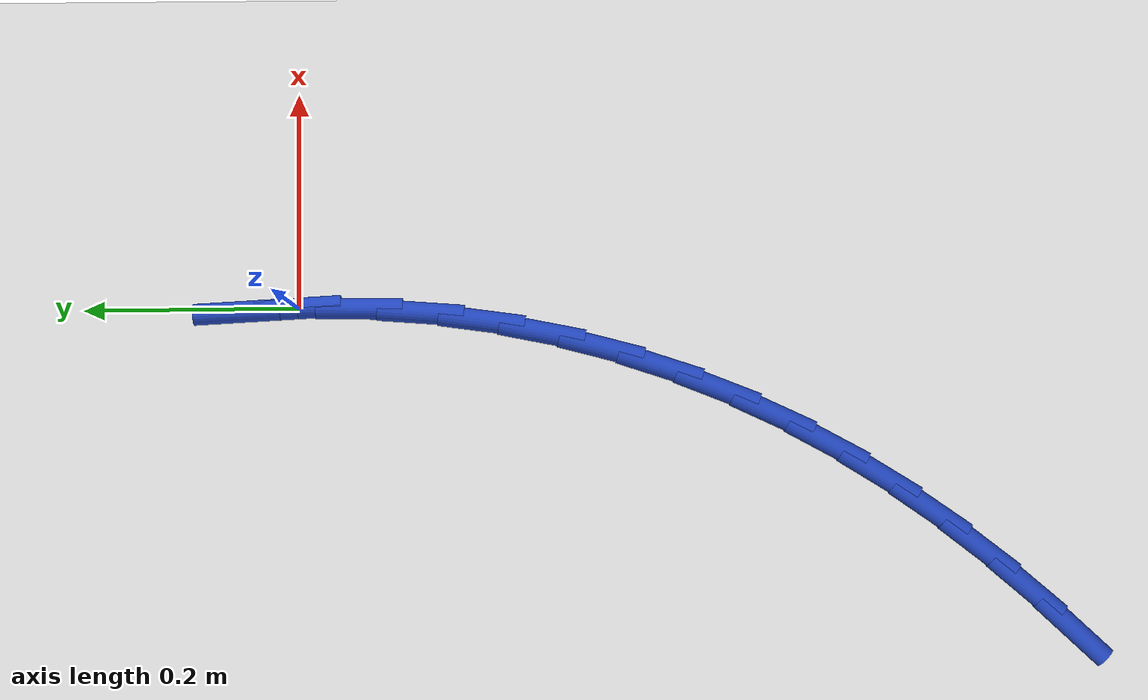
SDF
<sdf version="1.6">
 <world name="default">
  <model name="ground_plane">
   <static>1</static>
   <link name="link">
    <collision name="collision">
     <geometry><plane><normal>0 0 1</normal><size>100 100</size></plane></geometry>
     <surface><friction><ode><mu>100</mu><mu2>50</mu2></ode></friction></surface>
    </collision>
    <visual name="visual">
     <cast_shadows>0</cast_shadows>
     <geometry><plane><normal>0 0 1</normal><size>100 100</size></plane></geometry>
     <material>
      <script><uri>file://media/materials/scripts/gazebo.material</uri><name>Gazebo/WhiteGlow</name></script>
     </material>
    </visual>
   </link>
  </model>
  <model name="line">
   <link name="link_0">
    <pose>-4.336808689942018e-17 6.938893903907228e-17 0.01 0 1.57 -1.5190994933021693</pose>
    <collision name="collision">
     <geometry><cylinder><radius>0.01</radius><length>0.08</length></cylinder></geometry>
    </collision>
    <visual name="visual">
     <material>
      <script><name>Gazebo/Blue</name><uri>file://media/materials/scripts/gazebo.material</uri></script>
     </material>
     <geometry><cylinder><radius>0.01</radius><length>0.08</length></cylinder></geometry>
    </visual>
   </link>
   <link name="link_126">
    <pose>-0.2997509933152197 -0.7089466477776436 0.01 0 1.57 0.8168774032001841</pose>
    <collision name="collision">
     <geometry><cylinder><radius>0.01</radius><length>0.08</length></cylinder></geometry>
    </collision>
    <visual name="visual">
     <material>
      <script><name>Gazebo/Blue</name><uri>file://media/materials/scripts/gazebo.material</uri></script>
     </material>
     <geometry><cylinder><radius>0.01</radius><length>0.08</length></cylinder></geometry>
    </visual>
   </link>
   <link name="link_127">
    <pose>-0.26098506181976017 -0.6676598856207207 0.01 0 1.57 0.8611077827764355</pose>
    <collision name="collision">
     <geometry><cylinder><radius>0.01</radius><length>0.08</length></cylinder></geometry>
    </collision>
    <visual name="visual">
     <material>
      <script><name>Gazebo/Blue</name><uri>file://media/materials/scripts/gazebo.material</uri></script>
     </material>
     <geometry><cylinder><radius>0.01</radius><length>0.08</length></cylinder></geometry>
    </visual>
   </link>
   <link name="link_128">
    <pose>-0.22419353489003566 -0.6248286017226721 0.01 0 1.57 0.9087050685921298</pose>
    <collision name="collision">
     <geometry><cylinder><radius>0.01</radius><length>0.08</length></cylinder></geometry>
    </collision>
    <visual name="visual">
     <material>
      <script><name>Gazebo/Blue</name><uri>file://media/materials/scripts/gazebo.material</uri></script>
     </material>
     <geometry><cylinder><radius>0.01</radius><length>0.08</length></cylinder></geometry>
    </visual>
   </link>
   <link name="link_129">
    <pose>-0.18957674497732932 -0.580417427916932 0.01 0 1.57 0.9597318842048985</pose>
    <collision name="collision">
     <geometry><cylinder><radius>0.01</radius><length>0.08</length></cylinder></geometry>
    </collision>
    <visual name="visual">
     <material>
      <script><name>Gazebo/Blue</name><uri>file://media/materials/scripts/gazebo.material</uri></script>
     </material>
     <geometry><cylinder><radius>0.01</radius><length>0.08</length></cylinder></geometry>
    </visual>
   </link>
   <link name="link_130">
    <pose>-0.1573350245329243 -0.5343909960369343 0.01 0 1.57 1.0141880352912476</pose>
    <collision name="collision">
     <geometry><cylinder><radius>0.01</radius><length>0.08</length></cylinder></geometry>
    </collision>
    <visual name="visual">
     <material>
      <script><name>Gazebo/Blue</name><uri>file://media/materials/scripts/gazebo.material</uri></script>
     </material>
     <geometry><cylinder><radius>0.01</radius><length>0.08</length></cylinder></geometry>
    </visual>
   </link>
   <link name="link_131">
    <pose>-0.12766870600810334 -0.4867139379161129 0.01 0 1.57 1.071991802093624</pose>
    <collision name="collision">
     <geometry><cylinder><radius>0.01</radius><length>0.08</length></cylinder></geometry>
    </collision>
    <visual name="visual">
     <material>
      <script><name>Gazebo/Blue</name><uri>file://media/materials/scripts/gazebo.material</uri></script>
     </material>
     <geometry><cylinder><radius>0.01</radius><length>0.08</length></cylinder></geometry>
    </visual>
   </link>
   <link name="link_132">
    <pose>-0.1007781218541505 -0.437350885387903 0.01 0 1.57 1.1324386054393045</pose>
    <collision name="collision">
     <geometry><cylinder><radius>0.01</radius><length>0.08</length></cylinder></geometry>
    </collision>
    <visual name="visual">
     <material>
      <script><name>Gazebo/Blue</name><uri>file://media/materials/scripts/gazebo.material</uri></script>
     </material>
     <geometry><cylinder><radius>0.01</radius><length>0.08</length></cylinder></geometry>
    </visual>
   </link>
   <link name="link_133">
    <pose>-0.0768480420343964 -0.3863028593744765 0.01 0 1.57 1.1929130458542088</pose>
    <collision name="collision">
     <geometry><cylinder><radius>0.01</radius><length>0.08</length></cylinder></geometry>
    </collision>
    <visual name="visual">
     <material>
      <script><name>Gazebo/Blue</name><uri>file://media/materials/scripts/gazebo.material</uri></script>
     </material>
     <geometry><cylinder><radius>0.01</radius><length>0.08</length></cylinder></geometry>
    </visual>
   </link>
   <link name="link_134">
    <pose>-0.05598663571112398 -0.3337499931195951 0.01 0 1.57 1.2529429392119562</pose>
    <collision name="collision">
     <geometry><cylinder><radius>0.01</radius><length>0.08</length></cylinder></geometry>
    </collision>
    <visual name="visual">
     <material>
      <script><name>Gazebo/Blue</name><uri>file://media/materials/scripts/gazebo.material</uri></script>
     </material>
     <geometry><cylinder><radius>0.01</radius><length>0.08</length></cylinder></geometry>
    </visual>
   </link>
   <link name="link_135">
    <pose>-0.038278543601031084 -0.27992743540803655 0.01 0 1.57 1.312891885110919</pose>
    <collision name="collision">
     <geometry><cylinder><radius>0.01</radius><length>0.08</length></cylinder></geometry>
    </collision>
    <visual name="visual">
     <material>
      <script><name>Gazebo/Blue</name><uri>file://media/materials/scripts/gazebo.material</uri></script>
     </material>
     <geometry><cylinder><radius>0.01</radius><length>0.08</length></cylinder></geometry>
    </visual>
   </link>
   <link name="link_136">
    <pose>-0.02380840009702499 -0.2250703498112284 0.01 0 1.57 1.3731196880462242</pose>
    <collision name="collision">
     <geometry><cylinder><radius>0.01</radius><length>0.08</length></cylinder></geometry>
    </collision>
    <visual name="visual">
     <material>
      <script><name>Gazebo/Blue</name><uri>file://media/materials/scripts/gazebo.material</uri></script>
     </material>
     <geometry><cylinder><radius>0.01</radius><length>0.08</length></cylinder></geometry>
    </visual>
   </link>
   <link name="link_137">
    <pose>-0.01266083959201213 -0.16941389990059516 0.01 0 1.57 1.4339785346917036</pose>
    <collision name="collision">
     <geometry><cylinder><radius>0.01</radius><length>0.08</length></cylinder></geometry>
    </collision>
    <visual name="visual">
     <material>
      <script><name>Gazebo/Blue</name><uri>file://media/materials/scripts/gazebo.material</uri></script>
     </material>
     <geometry><cylinder><radius>0.01</radius><length>0.08</length></cylinder></geometry>
    </visual>
   </link>
   <link name="link_138">
    <pose>-0.0049204964788992 -0.1131932492475625 0.01 0 1.57 1.4958087323726177</pose>
    <collision name="collision">
     <geometry><cylinder><radius>0.01</radius><length>0.08</length></cylinder></geometry>
    </collision>
    <visual name="visual">
     <material>
      <script><name>Gazebo/Blue</name><uri>file://media/materials/scripts/gazebo.material</uri></script>
     </material>
     <geometry><cylinder><radius>0.01</radius><length>0.08</length></cylinder></geometry>
    </visual>
   </link>
   <link name="link_139">
    <pose>-0.0006720051505929199 -0.05664356142355576 0.01 0 1.57 1.5589331316066362</pose>
    <collision name="collision">
     <geometry><cylinder><radius>0.01</radius><length>0.08</length></cylinder></geometry>
    </collision>
    <visual name="visual">
     <material>
      <script><name>Gazebo/Blue</name><uri>file://media/materials/scripts/gazebo.material</uri></script>
     </material>
     <geometry><cylinder><radius>0.01</radius><length>0.08</length></cylinder></geometry>
    </visual>
   </link>
   <link name="link_140">
    <pose>-2.6020852139652106e-17 3.191891195797325e-16 0.01 0 1.57 -1.517943025703864</pose>
    <collision name="collision">
     <geometry><cylinder><radius>0.01</radius><length>0.08</length></cylinder></geometry>
    </collision>
    <visual name="visual">
     <material>
      <script><name>Gazebo/Blue</name><uri>file://media/materials/scripts/gazebo.material</uri></script>
     </material>
     <geometry><cylinder><radius>0.01</radius><length>0.08</length></cylinder></geometry>
    </visual>
   </link>
   <link name="link_141">
    <pose>-0.0029891154200272427 0.05650227145167843 0.01 0 1.57 -1.5179430257038646</pose>
    <collision name="collision">
     <geometry><cylinder><radius>0.01</radius><length>0.08</length></cylinder></geometry>
    </collision>
    <visual name="visual">
     <material>
      <script><name>Gazebo/Blue</name><uri>file://media/materials/scripts/gazebo.material</uri></script>
     </material>
     <geometry><cylinder><radius>0.01</radius><length>0.08</length></cylinder></geometry>
    </visual>
   </link>
  </model>
 </world>
</sdf>
